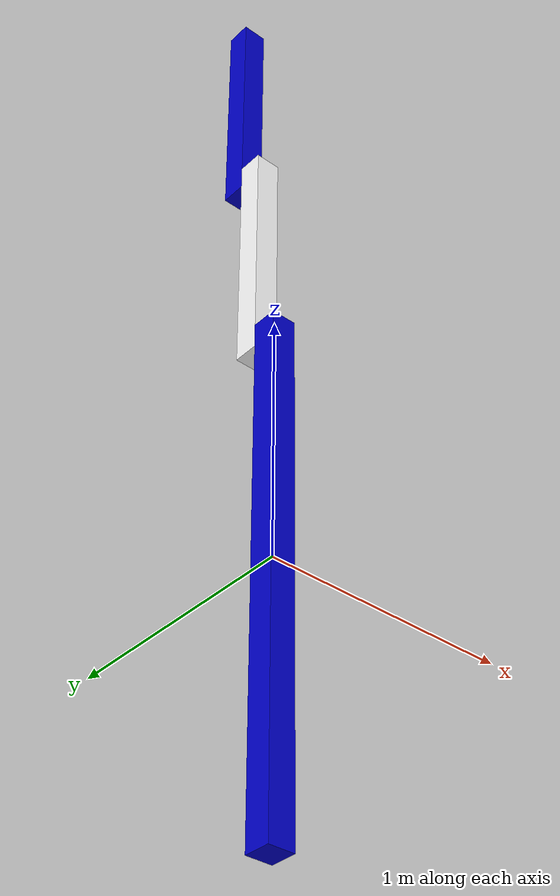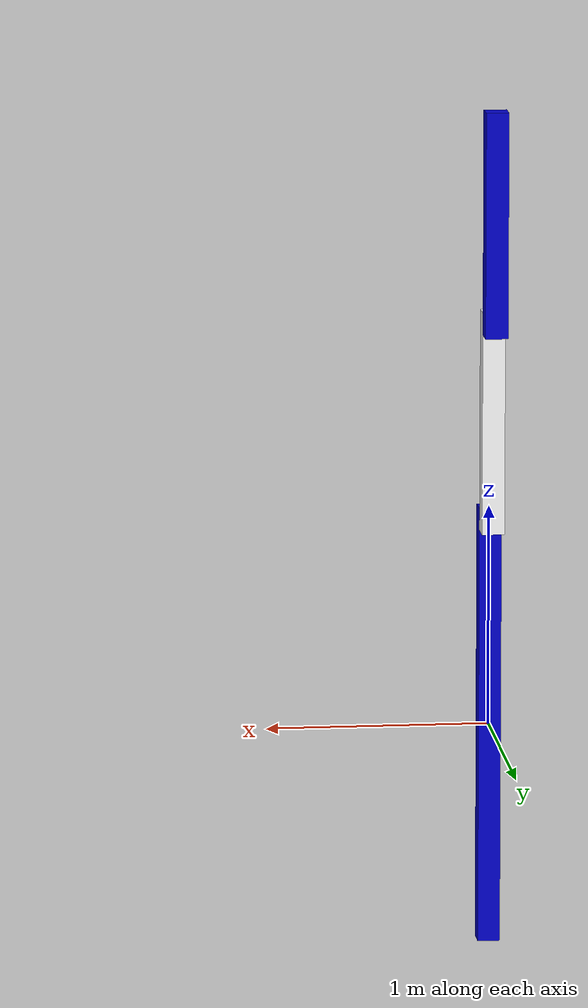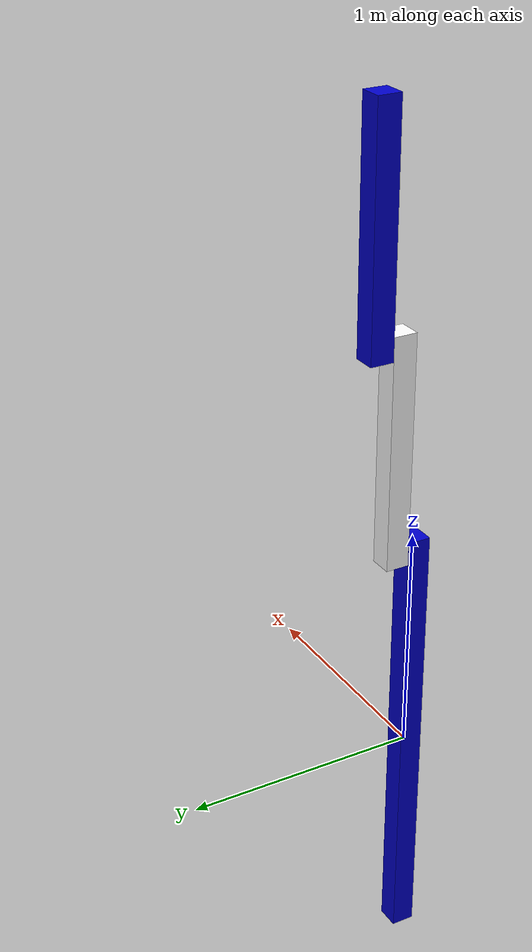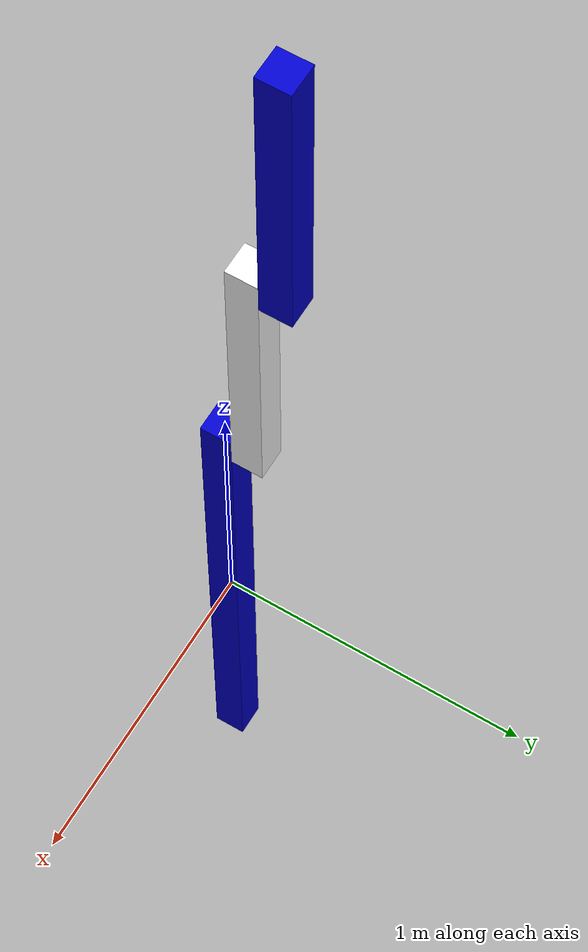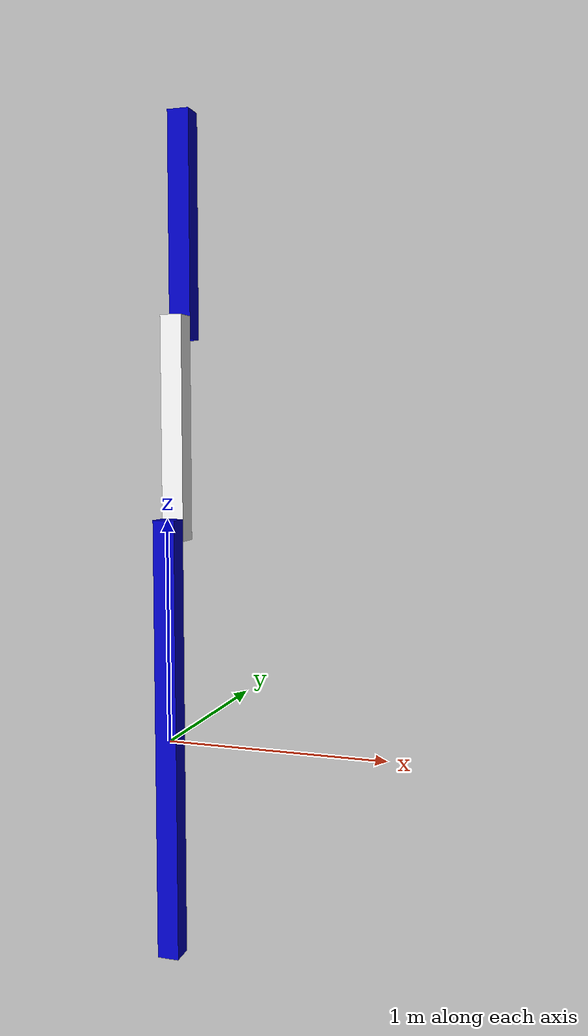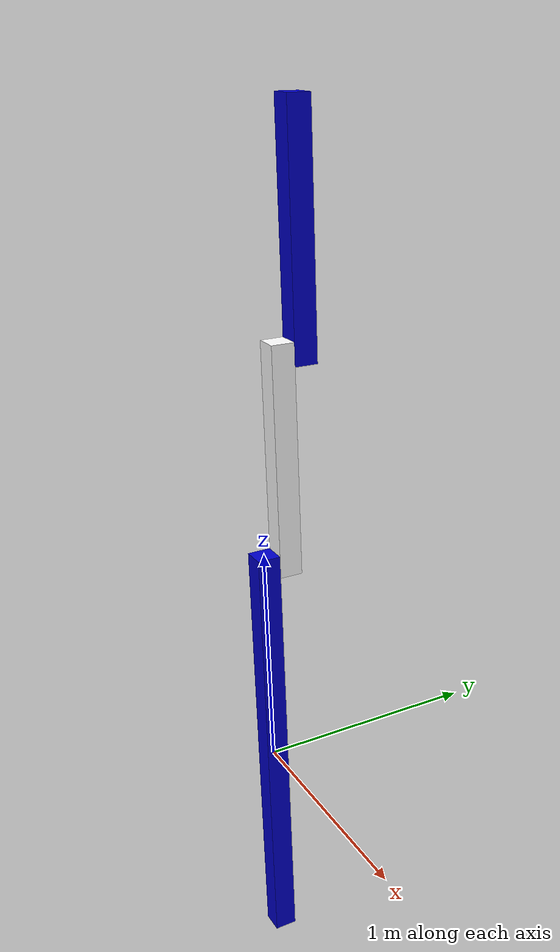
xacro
<?xml version="1.0" ?>
<robot name="khalifa_manipulator" xmlns:xacro="http://www.ros.org/wiki/xacro">

	<xacro:property name="mass" value="1.0" />
	<xacro:property name="width" value="0.1" />

	<material name="blue">
		<color rgba="0 0 0.8 1"/>
	</material>

	<material name="white">
		<color rgba="1 1 1 1"/>
	</material>

	<link name="world"/>

	<joint name="base_link_to_gazebo" type="fixed">
		<parent link="world"/>
		<child link="base_link"/>
	</joint>

	<link name="base_link">
		<visual>
			<origin xyz="0 0 0" rpy="0 0 0"/>
			<geometry>
				<box size="0.1 0.1 2"/>
			</geometry>
			<material name="blue"/>
		</visual>

		<collision>
			<origin xyz="0 0 0" rpy="0 0 0"/>
			<geometry>
				<box size="0.1 0.1 2"/>
			</geometry>
		</collision>

		<inertial>
			<origin xyz="0 0 0" rpy="0 0 0"/>
			<mass value="${mass}"/>
			<inertia
				ixx="${mass / 12.0 * (width*width + 2*2)}" ixy="0.0" ixz="0.0"
	  			iyy="${mass / 12.0 * (2*2 + width*width)}" iyz="0.0"
				izz="${mass / 12.0 * (width*width + width*width)}"/>
		</inertial>
	</link>

	<joint name="joint1" type="revolute">
    	<parent link="base_link"/>
    	<child link="link1"/>
    	<origin xyz="0 ${width} 0.95 " rpy="0 0 0"/>
    	<axis xyz="0 1 0"/>
    	<!-- dynamics damping="100.0" friction="0.0" spring_reference="0.1" spring_stiffness="10" -->
    	<limit effort="1000.0" lower="0.0" upper="1.0" velocity="0.5"/>  <!-- In Radians -->
	</joint>

	<link name="link1">
		<visual>
			<origin xyz="0 0 0.45" rpy="0 0 0"/>
			<geometry>
				<box size="0.1 0.1 1"/>
			</geometry>
			<material name="white"/>
		</visual>

		<collision>
			<origin xyz="0 0 0.45" rpy="0 0 0"/>
			<geometry>
				<box size="0.1 0.1 1"/>
			</geometry>
		</collision>

		<inertial>
			<origin xyz="0 0 0.45" rpy="0 0 0"/>
			<mass value="${mass}"/>
			<inertia
				ixx="${mass / 12.0 * (width*width + 1*1)}" ixy="0.0" ixz="0.0"
	  			iyy="${mass / 12.0 * (1*1 + width*width)}" iyz="0.0"
				izz="${mass / 12.0 * (width*width + width*width)}"/>
		</inertial>
	</link>

	<joint name="joint2" type="revolute">
    	<parent link="link1"/>
    	<child link="link2"/>
    	<origin xyz="0 ${width} 0.90 " rpy="0 0 0"/>
    	<axis xyz="0 1 0"/>
    	<!-- dynamics damping="100.0" friction="0.0" spring_reference="0.1" spring_stiffness="0" -->
    	<limit effort="1000.0" lower="0.0" upper="1.0" velocity="0.5"/>  <!-- In Radians -->
	</joint>

	<link name="link2">
		<visual>
			<origin xyz="0 0 0.45" rpy="0 0 0"/>
			<geometry>
				<box size="0.1 0.1 1"/>
			</geometry>
			<material name="blue"/>
		</visual>

		<collision>
			<origin xyz="0 0 0.45" rpy="0 0 0"/>
			<geometry>
				<box size="0.1 0.1 1"/>
			</geometry>
		</collision>

		<inertial>
			<origin xyz="0 0 0.45" rpy="0 0 0"/>
			<mass value="${mass}"/>
			<inertia
				ixx="${mass / 12.0 * (width*width + 1*1)}" ixy="0.0" ixz="0.0"
	  			iyy="${mass / 12.0 * (1*1 + width*width)}" iyz="0.0"
				izz="${mass / 12.0 * (width*width + width*width)}"/>
		</inertial>
	</link>

	<gazebo>
		<plugin name="gazebo_ros_control" filename="libgazebo_ros_control.so">
			<robotNamespace>/rrserial</robotNamespace>
		</plugin> t2=math.acos(c/(2*l1*l2))

        k1=l1+l2*math.cos(t2)
        k2=l2*math.sin(t2)

        t1=math.atan2(z,x) - math.atan2(k2, k1)

	</gazebo>

	<transmission name="tran1">
		<type>transmission_interface/SimpleTransmission</type>
		<joint name="joint1">
			<hardwareInterface>hardware_interface/EffortJointInterface</hardwareInterface>
		</joint>
		<actuator name="motor1">
      		<hardwareInterface>hardware_interface/EffortJointInterface</hardwareInterface>
      		<mechanicalReduction>1</mechanicalReduction>
    	</actuator>
	</transmission>

	<transmission name="tran2">
		<type>transmission_interface/SimpleTransmission</type>
		<joint name="joint2">
			<hardwareInterface>hardware_interface/EffortJointInterface</hardwareInterface>
		</joint>
		<actuator name="motor2">
      		<hardwareInterface>hardware_interface/EffortJointInterface</hardwareInterface>
      		<mechanicalReduction>1</mechanicalReduction>
    	</actuator>
	</transmission>

</robot>
